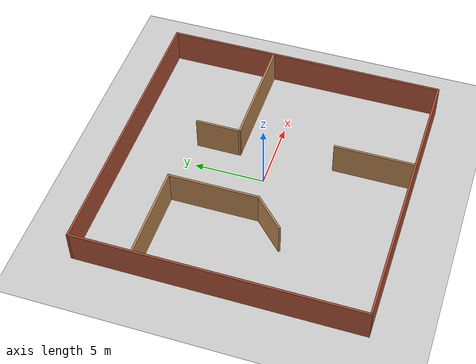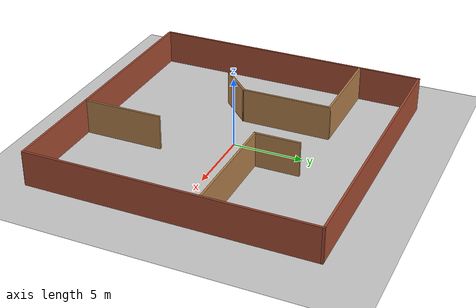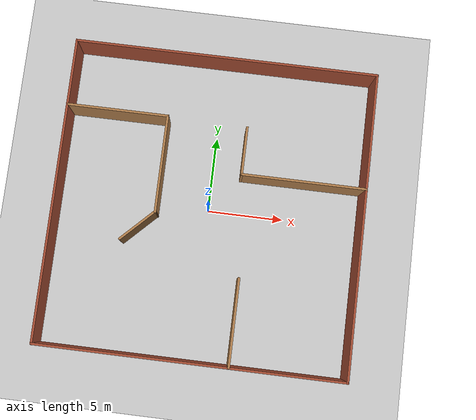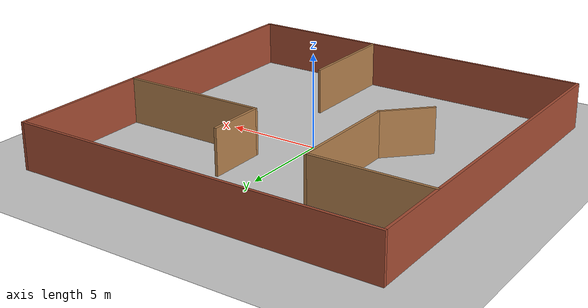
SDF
<sdf version="1.5">
 <world name="default">
  <physics name="default_physics" default="0" type="ode">
   <max_step_size>0.002</max_step_size>
   <real_time_factor>1</real_time_factor>
   <real_time_update_rate>500</real_time_update_rate>
  </physics>
  <light name="sun" type="directional">
   <cast_shadows>0</cast_shadows>
   <pose>0 0 10 0 -0 0</pose>
   <diffuse>0.8 0.8 0.8 1</diffuse>
   <specular>0.2 0.2 0.2 1</specular>
   <attenuation>
    <range>1000</range>
    <constant>0.9</constant>
    <linear>0.01</linear>
    <quadratic>0.001</quadratic>
   </attenuation>
   <direction>0 0.5 -0.9</direction>
  </light>
  <scene><shadows>0</shadows></scene>
  <include><uri>model://floorplan_A</uri></include>
  <include><uri>model://ground_plane</uri></include>
 </world>
</sdf>

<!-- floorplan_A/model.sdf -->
<sdf version='1.6'>
  <model name='floorplan_A'>
    <pose frame=''>0 0 0 0 -0 0</pose>
    <link name='Wall_10'>
      <collision name='Wall_10_Collision'>
        <geometry>
          <box>
            <size>3 0.15 2.5</size>
          </box>
        </geometry>
        <pose frame=''>0 0 1.25 0 -0 0</pose>
      </collision>
      <visual name='Wall_10_Visual'>
        <pose frame=''>0 0 1.25 0 -0 0</pose>
        <geometry>
          <box>
            <size>3 0.15 2.5</size>
          </box>
        </geometry>
        <material>
          <script>
            <uri>file://media/materials/scripts/gazebo.material</uri>
            <name>Gazebo/Wood</name>
          </script>
          <ambient>1 1 1 1</ambient>
        </material>
        <meta>
          <layer>0</layer>
        </meta>
      </visual>
      <pose frame=''>-4.37191 -1.74796 0 0 -0 -2.35619</pose>
    </link>
    <link name='Wall_13'>
      <collision name='Wall_13_Collision'>
        <geometry>
          <box>
            <size>5.75 0.15 2.5</size>
          </box>
        </geometry>
        <pose frame=''>0 0 1.25 0 -0 0</pose>
      </collision>
      <visual name='Wall_13_Visual'>
        <pose frame=''>0 0 1.25 0 -0 0</pose>
        <geometry>
          <box>
            <size>5.75 0.15 2.5</size>
          </box>
        </geometry>
        <material>
          <script>
            <uri>file://media/materials/scripts/gazebo.material</uri>
            <name>Gazebo/Wood</name>
          </script>
          <ambient>1 1 1 1</ambient>
        </material>
        <meta>
          <layer>0</layer>
        </meta>
      </visual>
      <pose frame=''>2.5018 -7.15956 0 0 -0 1.5708</pose>
    </link>
    <link name='Wall_15'>
      <collision name='Wall_15_Collision'>
        <geometry>
          <box>
            <size>8.25 0.15 2.5</size>
          </box>
        </geometry>
        <pose frame=''>0 0 1.25 0 -0 0</pose>
      </collision>
      <visual name='Wall_15_Visual'>
        <pose frame=''>0 0 1.25 0 -0 0</pose>
        <geometry>
          <box>
            <size>8.25 0.15 2.5</size>
          </box>
        </geometry>
        <material>
          <script>
            <uri>file://media/materials/scripts/gazebo.material</uri>
            <name>Gazebo/Wood</name>
          </script>
          <ambient>1 1 1 1</ambient>
        </material>
        <meta>
          <layer>0</layer>
        </meta>
      </visual>
      <pose frame=''>5.94215 2.34601 0 0 -0 3.14159</pose>
    </link>
    <link name='Wall_16'>
      <collision name='Wall_16_Collision'>
        <geometry>
          <box>
            <size>3.25 0.15 2.5</size>
          </box>
        </geometry>
        <pose frame=''>0 0 1.25 0 -0 0</pose>
      </collision>
      <visual name='Wall_16_Visual'>
        <pose frame=''>0 0 1.25 0 -0 0</pose>
        <geometry>
          <box>
            <size>3.25 0.15 2.5</size>
          </box>
        </geometry>
        <material>
          <script>
            <uri>file://media/materials/scripts/gazebo.material</uri>
            <name>Gazebo/Wood</name>
          </script>
          <ambient>1 1 1 1</ambient>
        </material>
        <meta>
          <layer>0</layer>
        </meta>
      </visual>
      <pose frame=''>1.89215 3.89601 0 0 -0 1.5708</pose>
    </link>
    <link name='Wall_3'>
      <collision name='Wall_3_Collision'>
        <geometry>
          <box>
            <size>20.15 0.15 2.5</size>
          </box>
        </geometry>
        <pose frame=''>0 0 1.25 0 -0 0</pose>
      </collision>
      <visual name='Wall_3_Visual'>
        <pose frame=''>0 0 1.25 0 -0 0</pose>
        <geometry>
          <box>
            <size>20.15 0.15 2.5</size>
          </box>
        </geometry>
        <material>
          <script>
            <uri>file://media/materials/scripts/gazebo.material</uri>
            <name>Gazebo/Bricks</name>
          </script>
          <ambient>1 1 1 1</ambient>
        </material>
        <meta>
          <layer>0</layer>
        </meta>
      </visual>
      <pose frame=''>-10 0 0 0 -0 -1.5708</pose>
    </link>
    <link name='Wall_4'>
      <collision name='Wall_4_Collision'>
        <geometry>
          <box>
            <size>20.15 0.15 2.5</size>
          </box>
        </geometry>
        <pose frame=''>0 0 1.25 0 -0 0</pose>
      </collision>
      <visual name='Wall_4_Visual'>
        <pose frame=''>0 0 1.25 0 -0 0</pose>
        <geometry>
          <box>
            <size>20.15 0.15 2.5</size>
          </box>
        </geometry>
        <material>
          <script>
            <uri>file://media/materials/scripts/gazebo.material</uri>
            <name>Gazebo/Bricks</name>
          </script>
          <ambient>1 1 1 1</ambient>
        </material>
        <meta>
          <layer>0</layer>
        </meta>
      </visual>
      <pose frame=''>0 -10 0 0 -0 0</pose>
    </link>
    <link name='Wall_5'>
      <collision name='Wall_5_Collision'>
        <geometry>
          <box>
            <size>20.15 0.15 2.5</size>
          </box>
        </geometry>
        <pose frame=''>0 0 1.25 0 -0 0</pose>
      </collision>
      <visual name='Wall_5_Visual'>
        <pose frame=''>0 0 1.25 0 -0 0</pose>
        <geometry>
          <box>
            <size>20.15 0.15 2.5</size>
          </box>
        </geometry>
        <material>
          <script>
            <uri>file://media/materials/scripts/gazebo.material</uri>
            <name>Gazebo/Bricks</name>
          </script>
          <ambient>1 1 1 1</ambient>
        </material>
        <meta>
          <layer>0</layer>
        </meta>
      </visual>
      <pose frame=''>10 0 0 0 -0 1.5708</pose>
    </link>
    <link name='Wall_6'>
      <collision name='Wall_6_Collision'>
        <geometry>
          <box>
            <size>20.15 0.15 2.5</size>
          </box>
        </geometry>
        <pose frame=''>0 0 1.25 0 -0 0</pose>
      </collision>
      <visual name='Wall_6_Visual'>
        <pose frame=''>0 0 1.25 0 -0 0</pose>
        <geometry>
          <box>
            <size>20.15 0.15 2.5</size>
          </box>
        </geometry>
        <material>
          <script>
            <uri>file://media/materials/scripts/gazebo.material</uri>
            <name>Gazebo/Bricks</name>
          </script>
          <ambient>1 1 1 1</ambient>
        </material>
        <meta>
          <layer>0</layer>
        </meta>
      </visual>
      <pose frame=''>0 10 0 0 -0 3.14159</pose>
    </link>
    <link name='Wall_8'>
      <collision name='Wall_8_Collision'>
        <geometry>
          <box>
            <size>6.75 0.15 2.5</size>
          </box>
        </geometry>
        <pose frame=''>0 0 1.25 0 -0 0</pose>
      </collision>
      <visual name='Wall_8_Visual'>
        <pose frame=''>0 0 1.25 0 -0 0</pose>
        <geometry>
          <box>
            <size>6.75 0.15 2.5</size>
          </box>
        </geometry>
        <material>
          <script>
            <uri>file://media/materials/scripts/gazebo.material</uri>
            <name>Gazebo/Wood</name>
          </script>
          <ambient>1 1 1 1</ambient>
        </material>
        <meta>
          <layer>0</layer>
        </meta>
      </visual>
      <pose frame=''>-6.66428 5.60966 0 0 -0 0</pose>
    </link>
    <link name='Wall_9'>
      <collision name='Wall_9_Collision'>
        <geometry>
          <box>
            <size>6.5 0.15 2.5</size>
          </box>
        </geometry>
        <pose frame=''>0 0 1.25 0 -0 0</pose>
      </collision>
      <visual name='Wall_9_Visual'>
        <pose frame=''>0 0 1.25 0 -0 0</pose>
        <geometry>
          <box>
            <size>6.5 0.15 2.5</size>
          </box>
        </geometry>
        <material>
          <script>
            <uri>file://media/materials/scripts/gazebo.material</uri>
            <name>Gazebo/Wood</name>
          </script>
          <ambient>1 1 1 1</ambient>
        </material>
        <meta>
          <layer>0</layer>
        </meta>
      </visual>
      <pose frame=''>-3.36428 2.43466 0 0 -0 -1.5708</pose>
    </link>
    <static>1</static>
  </model>
</sdf>
